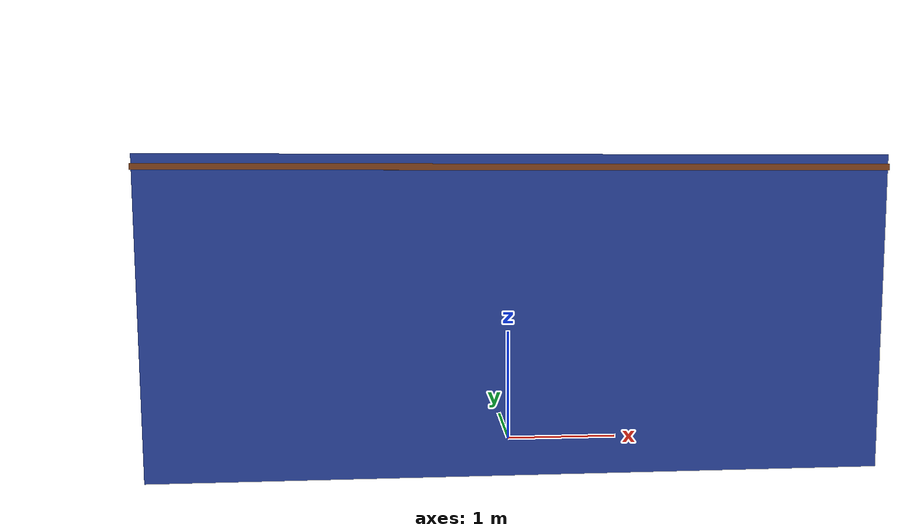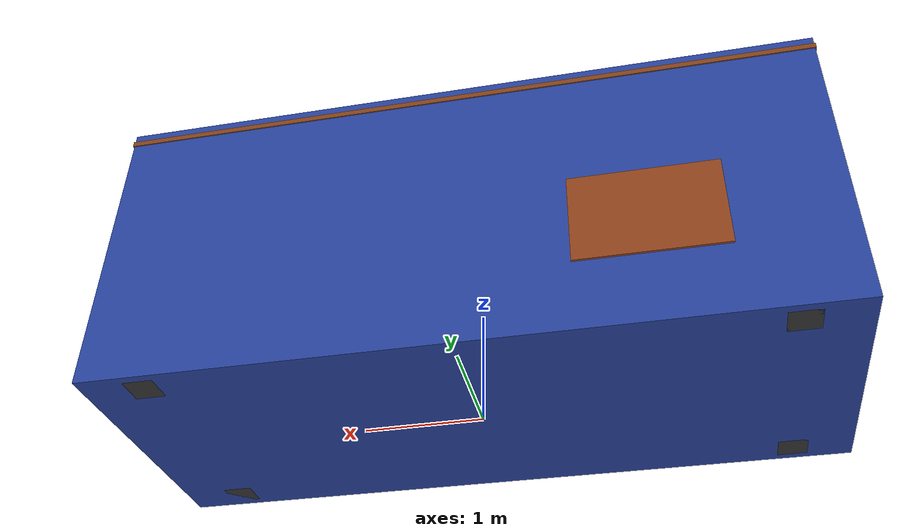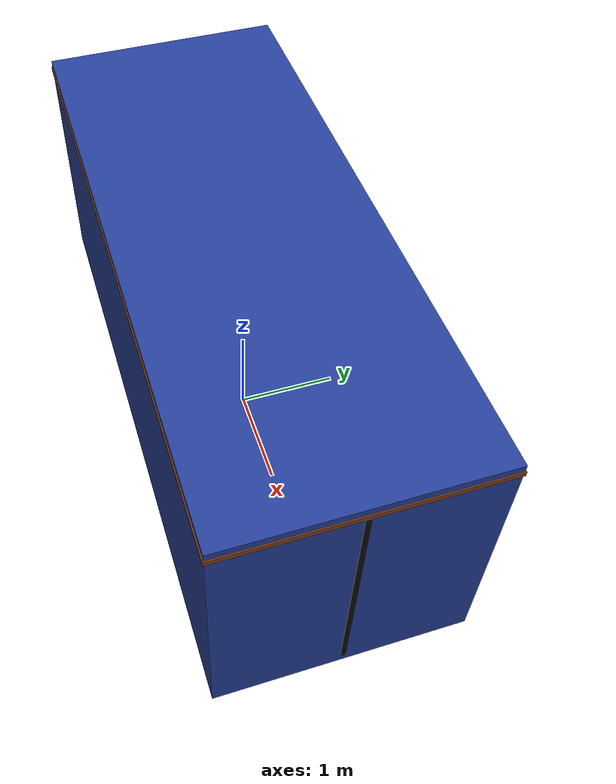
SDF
<?xml version="1.0" ?>
<sdf version="1.7">
  <model name="industrial_container">

    <static>true</static>

    <link name="container_link">

      <!-- INERTIA -->
      <inertial>
        <mass>5000.0</mass>
        <inertia>
          <ixx>5000</ixx>
          <iyy>5000</iyy>
          <izz>5000</izz>
        </inertia>
      </inertial>

      <!-- COLLISION -->
      <collision name="collision">
        <pose>0 0 1.3 0 0 0</pose>

        <geometry>
          <box>
            <size>6.0 2.4 2.6</size>
          </box>
        </geometry>
      </collision>

      <!-- MAIN BODY -->
      <visual name="container_body">

        <pose>0 0 1.3 0 0 0</pose>

        <geometry>
          <box>
            <size>6.0 2.4 2.6</size>
          </box>
        </geometry>

        <material>
          <!-- Azul industrial desgastado -->
          <ambient>0.1 0.2 0.5 1</ambient>
          <diffuse>0.15 0.25 0.6 1</diffuse>
          <specular>0.1 0.1 0.1 1</specular>
        </material>

      </visual>

      <!-- LEFT DOOR -->
      <visual name="left_door">

        <pose>2.98 -0.6 1.3 0 0 0</pose>

        <geometry>
          <box>
            <size>0.03 1.15 2.4</size>
          </box>
        </geometry>

        <material>
          <ambient>0.08 0.18 0.45 1</ambient>
          <diffuse>0.12 0.22 0.55 1</diffuse>
        </material>

      </visual>

      <!-- RIGHT DOOR -->
      <visual name="right_door">

        <pose>2.98 0.6 1.3 0 0 0</pose>

        <geometry>
          <box>
            <size>0.03 1.15 2.4</size>
          </box>
        </geometry>

        <material>
          <ambient>0.08 0.18 0.45 1</ambient>
          <diffuse>0.12 0.22 0.55 1</diffuse>
        </material>

      </visual>

      <!-- CENTRAL DOOR SEAM -->
      <visual name="door_seam">

        <pose>3.0 0 1.3 0 0 0</pose>

        <geometry>
          <box>
            <size>0.01 0.05 2.4</size>
          </box>
        </geometry>

        <material>
          <ambient>0.02 0.02 0.02 1</ambient>
          <diffuse>0.05 0.05 0.05 1</diffuse>
        </material>

      </visual>

      <!-- TOP RUST STRIP -->
      <visual name="rust_top">

        <pose>0 0 2.5 0 0 0</pose>

        <geometry>
          <box>
            <size>6.02 2.42 0.05</size>
          </box>
        </geometry>

        <material>
          <ambient>0.4 0.2 0.1 1</ambient>
          <diffuse>0.5 0.25 0.1 1</diffuse>
        </material>

      </visual>

      <!-- SIDE RUST PATCH -->
      <visual name="rust_patch_side">

        <pose>-1.5 1.21 1.0 0 0 0</pose>

        <geometry>
          <box>
            <size>1.2 0.02 0.8</size>
          </box>
        </geometry>

        <material>
          <ambient>0.45 0.2 0.08 1</ambient>
          <diffuse>0.55 0.25 0.1 1</diffuse>
        </material>

      </visual>

      <!-- BOTTOM SUPPORTS -->

      <visual name="support_1">
        <pose>-2.5 -1.0 0.15 0 0 0</pose>

        <geometry>
          <box>
            <size>0.25 0.25 0.3</size>
          </box>
        </geometry>

        <material>
          <ambient>0.15 0.15 0.15 1</ambient>
          <diffuse>0.2 0.2 0.2 1</diffuse>
        </material>
      </visual>

      <visual name="support_2">
        <pose>-2.5 1.0 0.15 0 0 0</pose>

        <geometry>
          <box>
            <size>0.25 0.25 0.3</size>
          </box>
        </geometry>

        <material>
          <ambient>0.15 0.15 0.15 1</ambient>
          <diffuse>0.2 0.2 0.2 1</diffuse>
        </material>
      </visual>

      <visual name="support_3">
        <pose>2.5 -1.0 0.15 0 0 0</pose>

        <geometry>
          <box>
            <size>0.25 0.25 0.3</size>
          </box>
        </geometry>

        <material>
          <ambient>0.15 0.15 0.15 1</ambient>
          <diffuse>0.2 0.2 0.2 1</diffuse>
        </material>
      </visual>

      <visual name="support_4">
        <pose>2.5 1.0 0.15 0 0 0</pose>

        <geometry>
          <box>
            <size>0.25 0.25 0.3</size>
          </box>
        </geometry>

        <material>
          <ambient>0.15 0.15 0.15 1</ambient>
          <diffuse>0.2 0.2 0.2 1</diffuse>
        </material>
      </visual>

    </link>

  </model>
</sdf>
